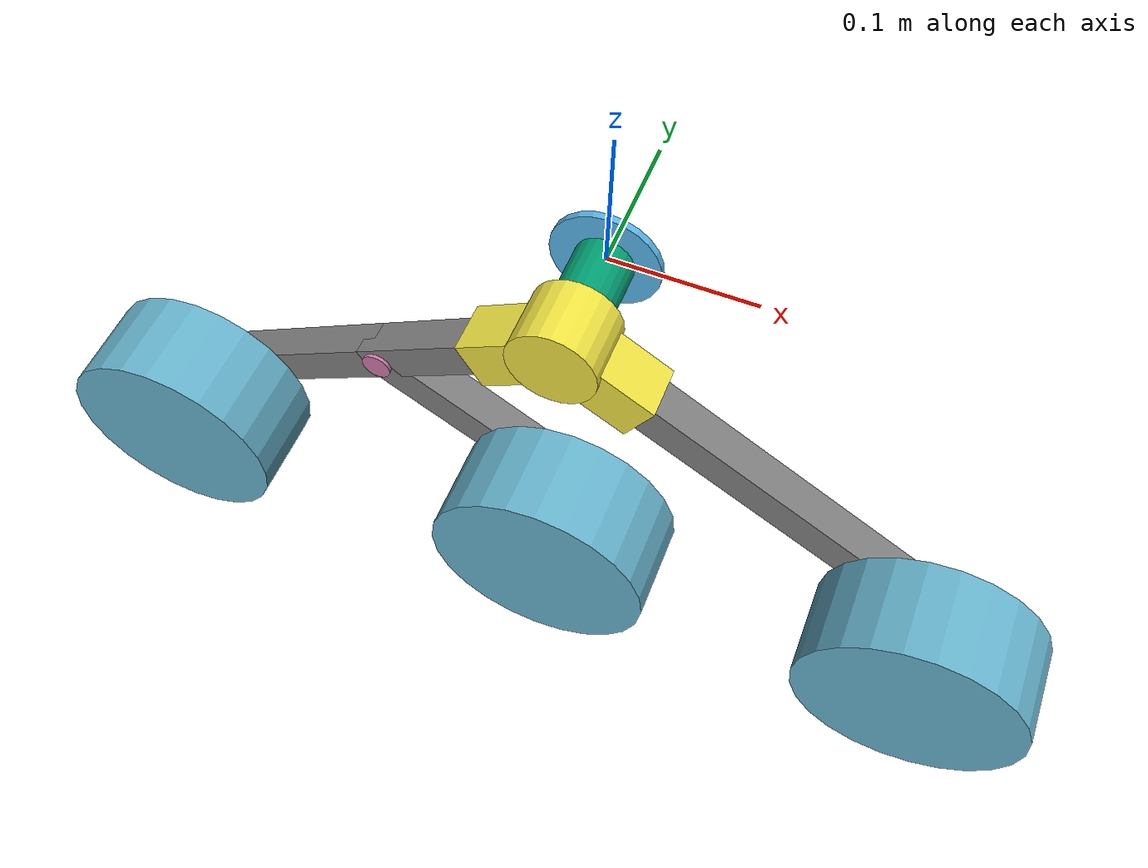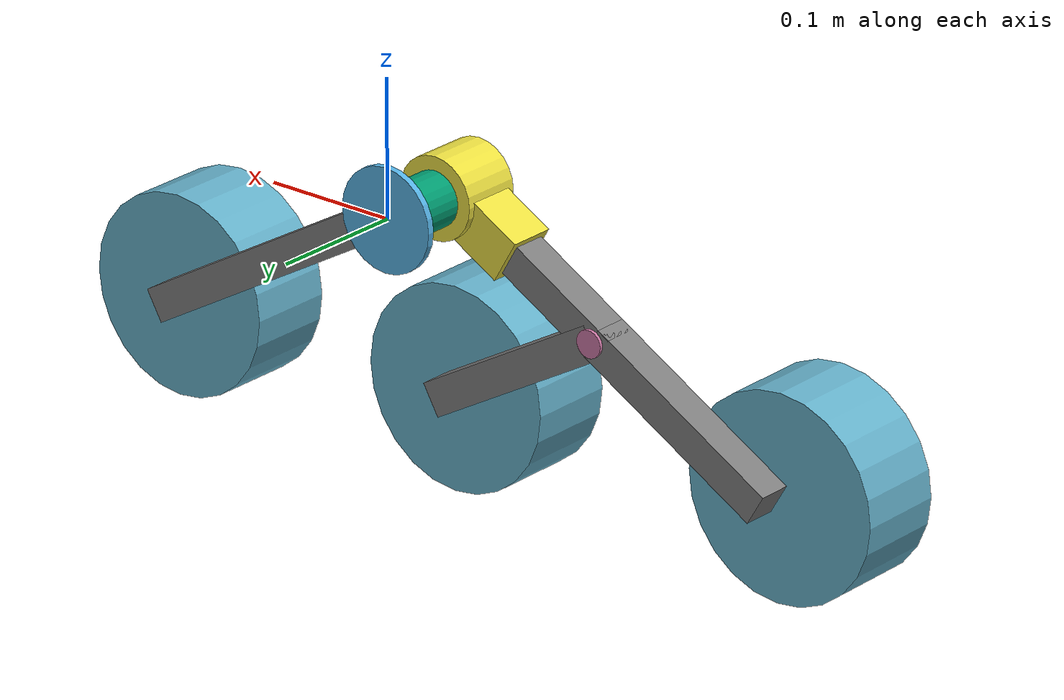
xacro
<?xml version="1.0"?>

<robot xmlns:xacro="http://www.ros.org/wiki/xacro" name="minesweeper_right">

  <link name="right_base_link"/>

  <xacro:property name="r_circular_plate_length" value="0.005"/>
  <xacro:property name="r_circular_plate_radius" value="0.0375"/>

  <link name = "r_circular_plate_link">
    <visual>
        <geometry>
            <cylinder length="${r_circular_plate_length}" radius="${r_circular_plate_radius}"/>
        </geometry>
        <origin xyz = "0 0 0" rpy="${pi/2} 0 0"/>
    </visual>
    <collision>
        <geometry>
            <cylinder length="${r_circular_plate_length}" radius="${r_circular_plate_radius}"/>
        </geometry>
        <origin xyz = "0 0 0" rpy="${pi/2} 0 0"/>
    </collision>
    <inertial>
      <origin xyz="0 0 0" rpy="${pi/2} 0 0"/> <!-- Position and orientation of the inertia frame relative to the link frame -->
      <mass value="0.01"/> <!-- Mass of the link in kilograms -->
      <inertia ixx="${1/12*0.01*(3*r_circular_plate_radius**2 + r_circular_plate_length**2)}" ixy="0" ixz="0" iyy="${1/12*0.01*(3*r_circular_plate_radius**2 + r_circular_plate_length**2)}" iyz="0" izz="${1/2*0.01*r_circular_plate_radius**2}"/> <!-- Inertia tensor components in kg*m^2 -->
    </inertial>
  </link>

  <joint name="r_circular_plate_joint" type="fixed">
    <parent link="right_base_link"/>
    <child link="r_circular_plate_link"/>
  </joint>

  <xacro:property name="r_bracket_length" value="0.045"/>
  <xacro:property name="r_bracket_radius" value="0.02"/>

  <link name="r_bracket_link">
    <visual>
        <geometry>
            <cylinder length = "${r_bracket_length}" radius="${r_bracket_radius}"/>
        </geometry>
        <origin xyz = "0 0 0" rpy="0 0 0"/>
    </visual>
    <collision>
        <geometry>
            <cylinder length = "${r_bracket_length}" radius="${r_bracket_radius}"/>
        </geometry>
        <origin xyz = "0 0 0" rpy="0 0 0"/>
    </collision>
    <inertial>
      <origin xyz="0 0 0" rpy="0 0 0"/> <!-- Position and orientation of the inertia frame relative to the link frame -->
      <mass value="0.03"/> <!-- Mass of the link in kilograms -->
      <inertia ixx="${1/12*0.01*(3*r_bracket_radius**2 + r_bracket_length**2)}" ixy="0" ixz="0" iyy="${1/12*0.01*(3*r_bracket_radius**2 + r_bracket_length**2)}" iyz="0" izz="${1/2*0.01*r_bracket_radius**2}"/> <!-- Inertia tensor components in kg*m^2 -->
    </inertial>
  </link>

  <joint name="r_bracket_joint" type="fixed">
    <parent link ="r_circular_plate_link"/>
    <child link ="r_bracket_link"/>
    <origin xyz="0 ${-r_circular_plate_length/2  - r_bracket_length/2} 0" rpy="${pi/2} 0 0"/>
  </joint>

  <xacro:property name="r_rot_bracket_length" value="0.045"/>
  <xacro:property name="r_rot_bracket_radius" value="0.03"/>
  <xacro:property name="r_leg_x" value="0.06"/>
  <xacro:property name="r_leg_y" value="0.035"/>
  <xacro:property name="r_leg_z" value="0.035"/>

  <link name = "r_rot_bracket_link">
    <visual>
        <geometry>
            <cylinder length = "${r_rot_bracket_length}" radius="${r_rot_bracket_radius}"/>
        </geometry>
        <origin xyz = "0 0 0" rpy="0 0 0"/>
    </visual>
    <collision>
        <geometry>
            <cylinder length = "${r_rot_bracket_length}" radius="${r_rot_bracket_radius}"/>
        </geometry>
        <origin xyz = "0 0 0" rpy="0 0 0"/>
    </collision>
    <inertial>
      <origin xyz="0 0 0" rpy="0 0 0"/> <!-- Position and orientation of the inertia frame relative to the link frame -->
      <mass value="0.07"/> <!-- Mass of the link in kilograms -->
      <inertia ixx="${1/12*0.07*(3*r_rot_bracket_radius**2 + r_rot_bracket_length**2)}" ixy="0" ixz="0" iyy="${1/12*0.07*(3*r_rot_bracket_radius**2 + r_rot_bracket_length**2)}" iyz="0" izz="${1/2*0.07*r_rot_bracket_radius**2}"/> <!-- Inertia tensor components in kg*m^2 -->
    </inertial>

    <visual>
      <geometry>
        <box size = "${r_leg_x} ${r_leg_y} ${r_leg_z}"/>
      </geometry>
      <origin xyz = "${r_leg_x/2} ${-r_leg_y/2} 0" rpy="0 0 ${-pi/6}"/>
    </visual>
    <collision>
      <geometry>
        <box size = "${r_leg_x} ${r_leg_y} ${r_leg_z}"/>
      </geometry>
      <origin xyz = "${r_leg_x/2} ${-r_leg_y/2} 0" rpy="0 0 ${-pi/6}"/>
    </collision>

    <visual>
      <geometry>
        <box size = "${r_leg_x} ${r_leg_y} ${r_leg_z}"/>
      </geometry>
      <origin xyz = "${-r_leg_x/2} ${-r_leg_y/2} 0" rpy="0 0 ${pi/6}"/>
    </visual>
    <collision>
      <geometry>
        <box size = "${r_leg_x} ${r_leg_y} ${r_leg_z}"/>
      </geometry>
      <origin xyz = "${-r_leg_x/2} ${-r_leg_y/2} 0" rpy="0 0 ${pi/6}"/>
    </collision>
  </link>

  <joint name="r_rot_bracket_joint" type="fixed">
    <parent link ="r_bracket_link"/>
    <child link ="r_rot_bracket_link"/>
    <origin xyz= "0 0 ${r_rot_bracket_length/2 + r_bracket_length/2}" rpy="0 0 0"/>
    <limit lower="-1.57" upper="1.57" effort="10" velocity="3"/>
  </joint>

  <xacro:property name="r_metal_leg_x" value="0.25"/>
  <xacro:property name="r_metal_leg_y" value="0.025"/>
  <xacro:property name="r_metal_leg_z" value="0.025"/>

  <link name="r_metal_leg_link">
    <visual>
      <geometry>
        <box size = "${r_metal_leg_x} ${r_metal_leg_y} ${r_metal_leg_z}"/>
      </geometry>
      <origin xyz = "0 0 0" rpy="0 0 0"/>
      <material name="steel">
        <color rgba="0.5 0.5 0.5 1"/> <!-- Adjust the RGBA values for your desired color and opacity -->
      </material>
    </visual>
    <collision>
      <geometry>
        <box size = "${r_metal_leg_x} ${r_metal_leg_y} ${r_metal_leg_z}"/>
      </geometry>
      <origin xyz = "0 0 0" rpy="0 0 0"/>
    </collision>
    <inertial>
      <origin xyz="0 0 0" rpy="0 0 0"/> <!-- Position and orientation of the inertia frame relative to the link frame -->
      <mass value="1.4"/> <!-- Mass of the link in kilograms -->
      <inertia ixx="${1/12*1.4*(r_metal_leg_y**2+r_metal_leg_z**2)}" ixy="0" ixz="0" iyy="${1/12*1.4*(r_metal_leg_x**2+r_metal_leg_z**2)}" iyz="0" izz="${1/12*1.4*(r_metal_leg_y**2+r_metal_leg_x**2)}"/> <!-- Inertia tensor components in kg*m^2 -->
    </inertial>
  </link>

  <joint name = "r_metal_leg_joint" type="fixed">
    <parent link = "r_rot_bracket_link"/>
    <child link = "r_metal_leg_link"/>
    <origin xyz = "${(r_metal_leg_x/2 + r_rot_bracket_radius + 0.025) *0.866 } ${-1*(r_metal_leg_x/2 + r_rot_bracket_radius + 0.025) *0.5} 0" rpy = "0 0 ${-pi/6}"/>
  </joint>

  <xacro:property name="r_metal_leg_mirror_x" value="0.1"/>

  <link name="r_metal_leg_mirror_link">
    <visual>
      <geometry>
        <box size = "${r_metal_leg_mirror_x} ${r_metal_leg_y} ${r_metal_leg_z}"/>
      </geometry>
      <origin xyz = "0 0 0" rpy="0 0 0"/>
      <material name="steel">
        <color rgba="0.5 0.5 0.5 1"/> <!-- Adjust the RGBA values for your desired color and opacity -->
      </material>
    </visual>
    <collision>
      <geometry>
        <box size = "${r_metal_leg_mirror_x} ${r_metal_leg_y} ${r_metal_leg_z}"/>
      </geometry>
      <origin xyz = "0 0 0" rpy="0 0 0"/>
    </collision>
    <inertial>
      <origin xyz="0 0 0" rpy="0 0 0"/> <!-- Position and orientation of the inertia frame relative to the link frame -->
      <mass value="0.1"/> <!-- Mass of the link in kilograms -->
      <inertia ixx="${1/12*0.1*(r_metal_leg_y**2+r_metal_leg_z**2)}" ixy="0" ixz="0" iyy="${1/12*0.1*(r_metal_leg_mirror_x**2+r_metal_leg_z**2)}" iyz="0" izz="${1/12*0.1*(r_metal_leg_y**2+r_metal_leg_mirror_x**2)}"/> <!-- Inertia tensor components in kg*m^2 -->
    </inertial>

  </link>

  <joint name = "r_metal_leg_mirror_joint" type="fixed">
    <parent link = "r_rot_bracket_link"/>
    <child link = "r_metal_leg_mirror_link"/>
    <origin xyz = "${-1*(r_metal_leg_mirror_x/2  + r_rot_bracket_radius + 0.025) *0.866 } ${-1*(r_metal_leg_mirror_x/2 + r_rot_bracket_radius+ 0.025) *0.5} 0" rpy = "0 0 ${pi/6}"/>
  </joint>

  <xacro:property name="r_bjw_o_radius" value="0.01"/>
  <xacro:property name="r_bjw_o_length" value="0.03"/>

  <link name="r_bjw_link">
    <visual>
      <geometry>
        <cylinder radius="${r_bjw_o_radius}" length="${r_bjw_o_length}"/>
      </geometry>
      <origin xyz="0 0 0" rpy="0 0 0"/>
    </visual>
    <collision>
      <geometry>
        <cylinder radius="${r_bjw_o_radius}" length="${r_bjw_o_length}"/>
      </geometry>
      <origin xyz="0 0 0" rpy="0 0 0"/>
    </collision>
    <inertial>
      <origin xyz="0 0 0" rpy="0 0 0"/> <!-- Position and orientation of the inertia frame relative to the link frame -->
      <mass value="0.03"/> <!-- Mass of the link in kilograms -->
      <inertia ixx="${1/12*0.03*(3*r_bjw_o_radius**2 + r_bjw_o_length**2)}" ixy="0" ixz="0" iyy="${1/12*0.03*(3*r_bjw_o_radius**2 + r_bjw_o_length**2)}" iyz="0" izz="${1/2*0.03*r_bjw_o_radius**2}"/> <!-- Inertia tensor components in kg*m^2 -->
    </inertial>
  </link>

  <joint name="r_bjw_joint" type="revolute">
    <parent link="r_metal_leg_mirror_link"/>
    <child link="r_bjw_link"/>
    <origin xyz ="${-1*(r_metal_leg_mirror_x/2-r_bjw_o_radius)} 0 0" rpy="0 0 0"/>
    <limit lower="-2" upper="0" effort="10" velocity="3"/>
    <axis xyz = "0 0 1"/>
  </joint>

  <link name = "r_short_leg_link">
    <visual>
      <geometry>
        <box size="${r_metal_leg_x - r_metal_leg_mirror_x + r_bjw_o_radius} ${r_metal_leg_y} ${r_metal_leg_z}" rpy="0 0 0"/>
      </geometry>
      <material name="steel">
        <color rgba="0.5 0.5 0.5 1"/> <!-- Adjust the RGBA values for your desired color and opacity -->
      </material>
      <origin xyz="0 0 0" rpy="0 0 0"/>
    </visual>
    <collision>
      <geometry>
        <box size="${r_metal_leg_x - r_metal_leg_mirror_x + r_bjw_o_radius} ${r_metal_leg_y} ${r_metal_leg_z}" rpy="0 0 0"/>
      </geometry>
      <origin xyz="0 0 0" rpy="0 0 0"/>
    </collision>
    <inertial>
      <origin xyz="0 0 0" rpy="0 0 0"/> <!-- Position and orientation of the inertia frame relative to the link frame -->
      <mass value="0.05"/> <!-- Mass of the link in kilograms -->
      <inertia ixx="${1/12*0.05*(r_metal_leg_y**2 + r_metal_leg_z**2)}" ixy="0" ixz="0" iyy="${1/12*0.05*((r_metal_leg_x - r_metal_leg_mirror_x + r_bjw_o_radius)**2 + r_metal_leg_z**2)}" iyz="0" izz="${1/12*0.05*((r_metal_leg_x - r_metal_leg_mirror_x + r_bjw_o_radius)**2 + r_metal_leg_y**2)}"/> <!-- Inertia tensor components in kg*m^2 -->
    </inertial>
  </link>

  <joint name="r_short_leg_joint" type="fixed">
    <parent link="r_bjw_link"/>
    <child link="r_short_leg_link"/>
    <origin xyz="${-1*(r_metal_leg_x - r_metal_leg_mirror_x + r_bjw_o_radius)/2} 0 0" rpy="0 0 0"/>
  </joint>

    <link name = "r_short_leg_two_link">
    <visual>
      <geometry>
        <box size="${r_metal_leg_x - r_metal_leg_mirror_x + r_bjw_o_radius} ${r_metal_leg_y} ${r_metal_leg_z}" rpy="0 0 0"/>
      </geometry>
      <origin xyz="${(r_metal_leg_x - r_metal_leg_mirror_x + r_bjw_o_radius)/2} 0 0" rpy="0 0 0"/>
      <material name="steel">
        <color rgba="0.5 0.5 0.5 1"/> <!-- Adjust the RGBA values for your desired color and opacity -->
      </material>
    </visual>
    <collision>
      <geometry>
        <box size="${r_metal_leg_x - r_metal_leg_mirror_x + r_bjw_o_radius} ${r_metal_leg_y} ${r_metal_leg_z}" rpy="0 0 0"/>
      </geometry>
      <origin xyz="${(r_metal_leg_x - r_metal_leg_mirror_x + r_bjw_o_radius)/2} 0 0" rpy="0 0 0"/>
    </collision>
    <inertial>
      <origin xyz="${(r_metal_leg_x - r_metal_leg_mirror_x + r_bjw_o_radius)/2} 0 0" rpy="0 0 0"/> <!-- Position and orientation of the inertia frame relative to the link frame -->
      <mass value="0.05"/> <!-- Mass of the link in kilograms -->
      <inertia ixx="${1/12*0.05*(r_metal_leg_z**2 + r_metal_leg_y**2)}" ixy="0" ixz="0" iyy="${1/12*0.05*(r_metal_leg_z**2 + (r_metal_leg_x - r_metal_leg_mirror_x + r_bjw_o_radius)**2)}" iyz="0" izz="${1/12*0.05*(r_metal_leg_y**2 + (r_metal_leg_x - r_metal_leg_mirror_x + r_bjw_o_radius)**2)}"/> <!-- Inertia tensor components in kg*m^2 -->
    </inertial>
  </link>

  <joint name="r_short_leg_two_joint" type="fixed">
    <parent link="r_bjw_link"/>
    <child link="r_short_leg_two_link"/>
    <origin xyz="0 0 0" rpy="0 0 ${-pi/3}"/>
  </joint>

  <xacro:property name="r_wheel_length" value="0.065"/>
  <xacro:property name="r_wheel_radius" value="0.075"/>

  <link name="r_wheel_one">
    <visual>
      <geometry>
        <cylinder length="${r_wheel_length}" radius="${r_wheel_radius}"/>
      </geometry>
      <origin xyz="0 0 0" rpy="0 0 0"/>
      <material name="steel">
        <color rgba="0.4 0.7 0.8 1"/> <!-- Adjust the RGBA values for your desired color and opacity -->
      </material>
    </visual>
    <collision>
      <geometry>
        <cylinder length="${r_wheel_length}" radius="${r_wheel_radius}"/>
      </geometry>
      <origin xyz="0 0 0" rpy="0 0 0"/>
    </collision>
    <inertial>
      <origin xyz="0 0 0" rpy="0 0 0"/> <!-- Position and orientation of the inertia frame relative to the link frame -->
      <mass value="0.5"/> <!-- Mass of the link in kilograms -->
      <inertia ixx="${1/12*0.5*(3*r_wheel_radius**2 + r_wheel_length**2)}" ixy="0" ixz="0" iyy="${1/12*0.5*(3*r_wheel_radius**2 + r_wheel_length**2)}" iyz="0" izz="${1/2*0.5*r_wheel_radius**2}"/> <!-- Inertia tensor components in kg*m^2 -->
    </inertial>
  </link>

  <joint name="r_wheel_one_joint" type="continuous">
    <parent link="r_metal_leg_link"/>
    <child link="r_wheel_one"/>
    <origin xyz="${r_metal_leg_x/2} 0 ${1*(r_metal_leg_z/2 + r_wheel_length/2)}" rpy="0 0 0"/>
    <axis xyz = "0 0 1"/>
  </joint>

  <link name="r_wheel_two">
    <visual>
      <geometry>
        <cylinder length="${r_wheel_length}" radius="${r_wheel_radius}"/>
      </geometry>
      <origin xyz="0 0 0" rpy="0 0 0"/>
      <material name="steel">
        <color rgba="0.4 0.7 0.8 1"/> <!-- Adjust the RGBA values for your desired color and opacity -->
      </material>
    </visual>
    <collision>
      <geometry>
        <cylinder length="${r_wheel_length}" radius="${r_wheel_radius}"/>
      </geometry>
      <origin xyz="0 0 0" rpy="0 0 0"/>
    </collision>
    <inertial>
      <origin xyz="0 0 0" rpy="0 0 0"/> <!-- Position and orientation of the inertia frame relative to the link frame -->
      <mass value="0.5"/> <!-- Mass of the link in kilograms -->
      <inertia ixx="${1/12*0.5*(3*r_wheel_radius**2 + r_wheel_length**2)}" ixy="0" ixz="0" iyy="${1/12*0.5*(3*r_wheel_radius**2 + r_wheel_length**2)}" iyz="0" izz="${1/2*0.5*r_wheel_radius**2}"/> <!-- Inertia tensor components in kg*m^2 -->
    </inertial>
  </link>

  <joint name="r_wheel_two_joint" type="continuous">
    <parent link="r_short_leg_two_link"/>
    <child link="r_wheel_two"/>
    <origin xyz="${(r_metal_leg_x - r_metal_leg_mirror_x +r_bjw_o_radius)} 0 ${1*(r_metal_leg_z/2 + r_wheel_length/2)}" rpy="0 0 0"/>
    <axis xyz = "0  0 1"/>
  </joint>

  <link name="r_wheel_three">
    <visual>
      <geometry>
        <cylinder length="${r_wheel_length}" radius="${r_wheel_radius}"/>
      </geometry>
      <origin xyz="0 0 0" rpy="0 0 0"/>
      <material name="steel">
        <color rgba="0.4 0.7 0.8 1"/> <!-- Adjust the RGBA values for your desired color and opacity -->
      </material>
    </visual>
    <collision>
      <geometry>
        <cylinder length="${r_wheel_length}" radius="${r_wheel_radius}"/>
      </geometry>
      <origin xyz="0 0 0" rpy="0 0 0"/>
    </collision>
    <inertial>
      <origin xyz="0 0 0" rpy="0 0 0"/> <!-- Position and orientation of the inertia frame relative to the link frame -->
      <mass value="0.5"/> <!-- Mass of the link in kilograms -->
      <inertia ixx="${1/12*0.5*(3*r_wheel_radius**2 + r_wheel_length**2)}" ixy="0" ixz="0" iyy="${1/12*0.5*(3*r_wheel_radius**2 + r_wheel_length**2)}" iyz="0" izz="${1/2*0.5*r_wheel_radius**2}"/> <!-- Inertia tensor components in kg*m^2 -->
    </inertial>
  </link>

  <joint name="r_wheel_three_joint" type="continuous">
    <parent link="r_short_leg_link"/>
    <child link="r_wheel_three"/>
    <origin xyz="${-1*(r_metal_leg_x - r_metal_leg_mirror_x + r_bjw_o_radius)/2} 0 ${1*(r_metal_leg_z/2+r_wheel_length/2)}" rpy="0 0 0"/>
    <axis xyz = "0 0 1"/>
  </joint>

</robot>
